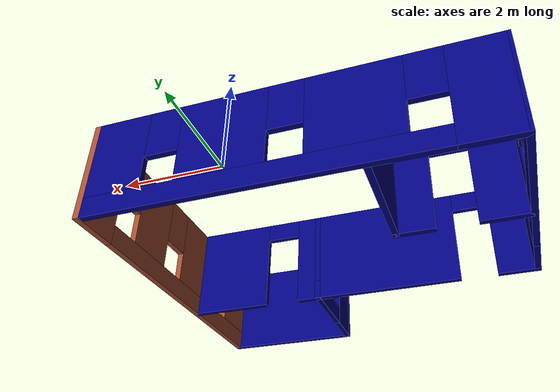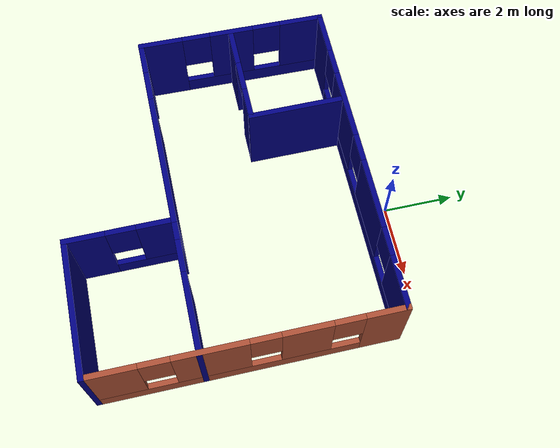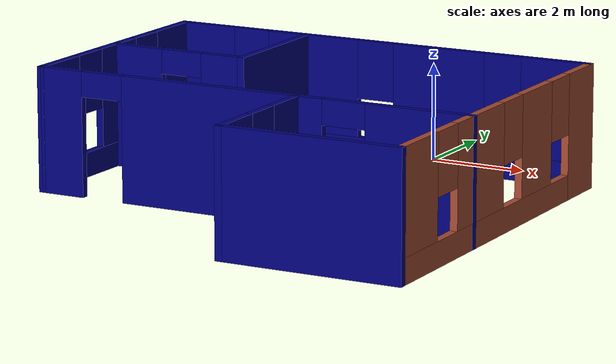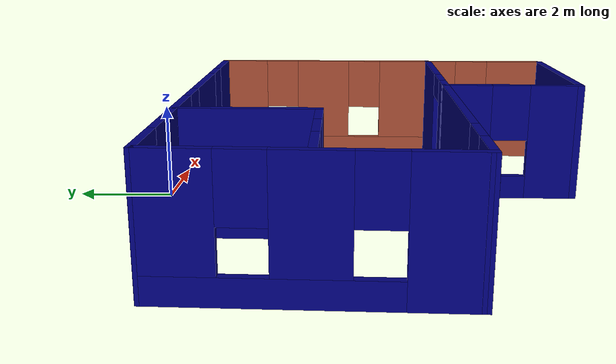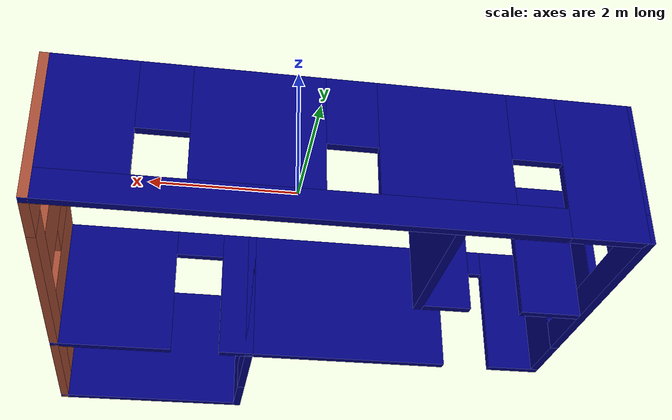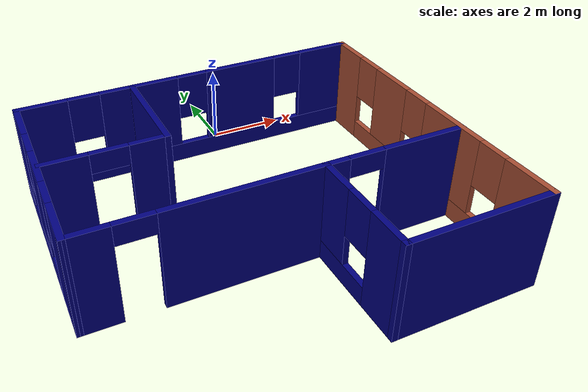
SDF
<?xml version='1.0'?>
<sdf version='1.6'>
  <model name='Building'>
    <pose frame=''>-0.890707 -4.78929 0 0 -0 0</pose>
    <link name='Wall_1'>
      <pose frame=''>0.050707 4.04929 0 0 -0 0</pose>
      <visual name='Wall_1_Visual_0'>
        <pose frame=''>-3.9775 0 1.25 0 -0 0</pose>
        <geometry>
          <box>
            <size>1.295 0.15 2.5</size>
          </box>
        </geometry>
        <material>
          <script>
            <uri>file://media/materials/scripts/gazebo.material</uri>
            <name>Gazebo/Grey</name>
          </script>
          <ambient>0 0 0.498039 1</ambient>
        </material>
        <meta>
          <layer>0</layer>
        </meta>
      </visual>
      <collision name='Wall_1_Collision_0'>
        <geometry>
          <box>
            <size>1.295 0.15 2.5</size>
          </box>
        </geometry>
        <pose frame=''>-3.9775 0 1.25 0 -0 0</pose>
      </collision>
      <visual name='Wall_1_Visual_1'>
        <pose frame=''>0.6475 0 0.25 0 -0 0</pose>
        <geometry>
          <box>
            <size>7.955 0.15 0.5</size>
          </box>
        </geometry>
        <material>
          <script>
            <uri>file://media/materials/scripts/gazebo.material</uri>
            <name>Gazebo/Grey</name>
          </script>
          <ambient>0 0 0.498039 1</ambient>
        </material>
        <meta>
          <layer>0</layer>
        </meta>
      </visual>
      <collision name='Wall_1_Collision_1'>
        <geometry>
          <box>
            <size>7.955 0.15 0.5</size>
          </box>
        </geometry>
        <pose frame=''>0.6475 0 0.25 0 -0 0</pose>
      </collision>
      <visual name='Wall_1_Visual_2'>
        <pose frame=''>-1.5 0 1.5 0 -0 0</pose>
        <geometry>
          <box>
            <size>2.06 0.15 2</size>
          </box>
        </geometry>
        <material>
          <script>
            <uri>file://media/materials/scripts/gazebo.material</uri>
            <name>Gazebo/Grey</name>
          </script>
          <ambient>0 0 0.498039 1</ambient>
        </material>
        <meta>
          <layer>0</layer>
        </meta>
      </visual>
      <collision name='Wall_1_Collision_2'>
        <geometry>
          <box>
            <size>2.06 0.15 2</size>
          </box>
        </geometry>
        <pose frame=''>-1.5 0 1.5 0 -0 0</pose>
      </collision>
      <visual name='Wall_1_Visual_3'>
        <pose frame=''>1.335 0 1.5 0 -0 0</pose>
        <geometry>
          <box>
            <size>2.01 0.15 2</size>
          </box>
        </geometry>
        <material>
          <script>
            <uri>file://media/materials/scripts/gazebo.material</uri>
            <name>Gazebo/Grey</name>
          </script>
          <ambient>0 0 0.498039 1</ambient>
        </material>
        <meta>
          <layer>0</layer>
        </meta>
      </visual>
      <collision name='Wall_1_Collision_3'>
        <geometry>
          <box>
            <size>2.01 0.15 2</size>
          </box>
        </geometry>
        <pose frame=''>1.335 0 1.5 0 -0 0</pose>
      </collision>
      <visual name='Wall_1_Visual_4'>
        <pose frame=''>3.8825 0 1.5 0 -0 0</pose>
        <geometry>
          <box>
            <size>1.485 0.15 2</size>
          </box>
        </geometry>
        <material>
          <script>
            <uri>file://media/materials/scripts/gazebo.material</uri>
            <name>Gazebo/Grey</name>
          </script>
          <ambient>0 0 0.498039 1</ambient>
        </material>
        <meta>
          <layer>0</layer>
        </meta>
      </visual>
      <collision name='Wall_1_Collision_4'>
        <geometry>
          <box>
            <size>1.485 0.15 2</size>
          </box>
        </geometry>
        <pose frame=''>3.8825 0 1.5 0 -0 0</pose>
      </collision>
      <visual name='Wall_1_Visual_5'>
        <pose frame=''>-2.93 0 1.9 0 -0 0</pose>
        <geometry>
          <box>
            <size>0.8 0.15 1.2</size>
          </box>
        </geometry>
        <material>
          <script>
            <uri>file://media/materials/scripts/gazebo.material</uri>
            <name>Gazebo/Grey</name>
          </script>
          <ambient>0 0 0.498039 1</ambient>
        </material>
        <meta>
          <layer>0</layer>
        </meta>
      </visual>
      <collision name='Wall_1_Collision_5'>
        <geometry>
          <box>
            <size>0.8 0.15 1.2</size>
          </box>
        </geometry>
        <pose frame=''>-2.93 0 1.9 0 -0 0</pose>
      </collision>
      <visual name='Wall_1_Visual_6'>
        <pose frame=''>-0.07 0 1.9 0 -0 0</pose>
        <geometry>
          <box>
            <size>0.8 0.15 1.2</size>
          </box>
        </geometry>
        <material>
          <script>
            <uri>file://media/materials/scripts/gazebo.material</uri>
            <name>Gazebo/Grey</name>
          </script>
          <ambient>0 0 0.498039 1</ambient>
        </material>
        <meta>
          <layer>0</layer>
        </meta>
      </visual>
      <collision name='Wall_1_Collision_6'>
        <geometry>
          <box>
            <size>0.8 0.15 1.2</size>
          </box>
        </geometry>
        <pose frame=''>-0.07 0 1.9 0 -0 0</pose>
      </collision>
      <visual name='Wall_1_Visual_7'>
        <pose frame=''>2.74 0 1.9 0 -0 0</pose>
        <geometry>
          <box>
            <size>0.8 0.15 1.2</size>
          </box>
        </geometry>
        <material>
          <script>
            <uri>file://media/materials/scripts/gazebo.material</uri>
            <name>Gazebo/Grey</name>
          </script>
          <ambient>0 0 0.498039 1</ambient>
        </material>
        <meta>
          <layer>0</layer>
        </meta>
      </visual>
      <collision name='Wall_1_Collision_7'>
        <geometry>
          <box>
            <size>0.8 0.15 1.2</size>
          </box>
        </geometry>
        <pose frame=''>2.74 0 1.9 0 -0 0</pose>
      </collision>
    </link>
    <link name='Wall_10'>
      <pose frame=''>-1.79929 -1.20071 0 0 -0 3.14159</pose>
      <visual name='Wall_10_Visual_0'>
        <pose frame=''>-0.9525 0 1.25 0 -0 0</pose>
        <geometry>
          <box>
            <size>3.845 0.15 2.5</size>
          </box>
        </geometry>
        <material>
          <script>
            <uri>file://media/materials/scripts/gazebo.material</uri>
            <name>Gazebo/Grey</name>
          </script>
          <ambient>0 0 0.498039 1</ambient>
        </material>
        <meta>
          <layer>0</layer>
        </meta>
      </visual>
      <collision name='Wall_10_Collision_0'>
        <geometry>
          <box>
            <size>3.845 0.15 2.5</size>
          </box>
        </geometry>
        <pose frame=''>-0.9525 0 1.25 0 -0 0</pose>
      </collision>
      <visual name='Wall_10_Visual_1'>
        <pose frame=''>2.3725 0 1.25 0 -0 0</pose>
        <geometry>
          <box>
            <size>1.005 0.15 2.5</size>
          </box>
        </geometry>
        <material>
          <script>
            <uri>file://media/materials/scripts/gazebo.material</uri>
            <name>Gazebo/Grey</name>
          </script>
          <ambient>0 0 0.498039 1</ambient>
        </material>
        <meta>
          <layer>0</layer>
        </meta>
      </visual>
      <collision name='Wall_10_Collision_1'>
        <geometry>
          <box>
            <size>1.005 0.15 2.5</size>
          </box>
        </geometry>
        <pose frame=''>2.3725 0 1.25 0 -0 0</pose>
      </collision>
      <visual name='Wall_10_Visual_2'>
        <pose frame=''>1.42 0 2.25 0 -0 0</pose>
        <geometry>
          <box>
            <size>0.9 0.15 0.5</size>
          </box>
        </geometry>
        <material>
          <script>
            <uri>file://media/materials/scripts/gazebo.material</uri>
            <name>Gazebo/Grey</name>
          </script>
          <ambient>0 0 0.498039 1</ambient>
        </material>
        <meta>
          <layer>0</layer>
        </meta>
      </visual>
      <collision name='Wall_10_Collision_2'>
        <geometry>
          <box>
            <size>0.9 0.15 0.5</size>
          </box>
        </geometry>
        <pose frame=''>1.42 0 2.25 0 -0 0</pose>
      </collision>
    </link>
    <link name='Wall_11'>
      <pose frame=''>-4.54929 1.42429 0 0 -0 1.55175</pose>
      <visual name='Wall_11_Visual_0'>
        <pose frame=''>-2.06764 0 1.25 0 -0 0</pose>
        <geometry>
          <box>
            <size>1.26566 0.15 2.5</size>
          </box>
        </geometry>
        <material>
          <script>
            <uri>file://media/materials/scripts/gazebo.material</uri>
            <name>Gazebo/Grey</name>
          </script>
          <ambient>0 0 0.498039 1</ambient>
        </material>
        <meta>
          <layer>0</layer>
        </meta>
      </visual>
      <collision name='Wall_11_Collision_0'>
        <geometry>
          <box>
            <size>1.26566 0.15 2.5</size>
          </box>
        </geometry>
        <pose frame=''>-2.06764 0 1.25 0 -0 0</pose>
      </collision>
      <visual name='Wall_11_Visual_1'>
        <pose frame=''>0.632832 0 0.25 0 -0 0</pose>
        <geometry>
          <box>
            <size>4.13529 0.15 0.5</size>
          </box>
        </geometry>
        <material>
          <script>
            <uri>file://media/materials/scripts/gazebo.material</uri>
            <name>Gazebo/Grey</name>
          </script>
          <ambient>0 0 0.498039 1</ambient>
        </material>
        <meta>
          <layer>0</layer>
        </meta>
      </visual>
      <collision name='Wall_11_Collision_1'>
        <geometry>
          <box>
            <size>4.13529 0.15 0.5</size>
          </box>
        </geometry>
        <pose frame=''>0.632832 0 0.25 0 -0 0</pose>
      </collision>
      <visual name='Wall_11_Visual_2'>
        <pose frame=''>-0.004142 0 1.5 0 -0 0</pose>
        <geometry>
          <box>
            <size>1.26134 0.15 2</size>
          </box>
        </geometry>
        <material>
          <script>
            <uri>file://media/materials/scripts/gazebo.material</uri>
            <name>Gazebo/Grey</name>
          </script>
          <ambient>0 0 0.498039 1</ambient>
        </material>
        <meta>
          <layer>0</layer>
        </meta>
      </visual>
      <collision name='Wall_11_Collision_2'>
        <geometry>
          <box>
            <size>1.26134 0.15 2</size>
          </box>
        </geometry>
        <pose frame=''>-0.004142 0 1.5 0 -0 0</pose>
      </collision>
      <visual name='Wall_11_Visual_3'>
        <pose frame=''>2.0635 0 1.5 0 -0 0</pose>
        <geometry>
          <box>
            <size>1.27395 0.15 2</size>
          </box>
        </geometry>
        <material>
          <script>
            <uri>file://media/materials/scripts/gazebo.material</uri>
            <name>Gazebo/Grey</name>
          </script>
          <ambient>0 0 0.498039 1</ambient>
        </material>
        <meta>
          <layer>0</layer>
        </meta>
      </visual>
      <collision name='Wall_11_Collision_3'>
        <geometry>
          <box>
            <size>1.27395 0.15 2</size>
          </box>
        </geometry>
        <pose frame=''>2.0635 0 1.5 0 -0 0</pose>
      </collision>
      <visual name='Wall_11_Visual_4'>
        <pose frame=''>-1.03481 0 1.9 0 -0 0</pose>
        <geometry>
          <box>
            <size>0.8 0.15 1.2</size>
          </box>
        </geometry>
        <material>
          <script>
            <uri>file://media/materials/scripts/gazebo.material</uri>
            <name>Gazebo/Grey</name>
          </script>
          <ambient>0 0 0.498039 1</ambient>
        </material>
        <meta>
          <layer>0</layer>
        </meta>
      </visual>
      <collision name='Wall_11_Collision_4'>
        <geometry>
          <box>
            <size>0.8 0.15 1.2</size>
          </box>
        </geometry>
        <pose frame=''>-1.03481 0 1.9 0 -0 0</pose>
      </collision>
      <visual name='Wall_11_Visual_5'>
        <pose frame=''>1.02653 0 1.9 0 -0 0</pose>
        <geometry>
          <box>
            <size>0.8 0.15 1.2</size>
          </box>
        </geometry>
        <material>
          <script>
            <uri>file://media/materials/scripts/gazebo.material</uri>
            <name>Gazebo/Grey</name>
          </script>
          <ambient>0 0 0.498039 1</ambient>
        </material>
        <meta>
          <layer>0</layer>
        </meta>
      </visual>
      <collision name='Wall_11_Collision_5'>
        <geometry>
          <box>
            <size>0.8 0.15 1.2</size>
          </box>
        </geometry>
        <pose frame=''>1.02653 0 1.9 0 -0 0</pose>
      </collision>
    </link>
    <link name='Wall_13'>
      <pose frame=''>-3.05429 1.39929 0 0 -0 0</pose>
      <visual name='Wall_13_Visual_0'>
        <pose frame=''>-0.9375 0 1.25 0 -0 0</pose>
        <geometry>
          <box>
            <size>1.125 0.15 2.5</size>
          </box>
        </geometry>
        <material>
          <script>
            <uri>file://media/materials/scripts/gazebo.material</uri>
            <name>Gazebo/Grey</name>
          </script>
          <ambient>0 0 0.498039 1</ambient>
        </material>
        <meta>
          <layer>0</layer>
        </meta>
      </visual>
      <collision name='Wall_13_Collision_0'>
        <geometry>
          <box>
            <size>1.125 0.15 2.5</size>
          </box>
        </geometry>
        <pose frame=''>-0.9375 0 1.25 0 -0 0</pose>
      </collision>
      <visual name='Wall_13_Visual_1'>
        <pose frame=''>1.0125 0 1.25 0 -0 0</pose>
        <geometry>
          <box>
            <size>0.975 0.15 2.5</size>
          </box>
        </geometry>
        <material>
          <script>
            <uri>file://media/materials/scripts/gazebo.material</uri>
            <name>Gazebo/Grey</name>
          </script>
          <ambient>0 0 0.498039 1</ambient>
        </material>
        <meta>
          <layer>0</layer>
        </meta>
      </visual>
      <collision name='Wall_13_Collision_1'>
        <geometry>
          <box>
            <size>0.975 0.15 2.5</size>
          </box>
        </geometry>
        <pose frame=''>1.0125 0 1.25 0 -0 0</pose>
      </collision>
      <visual name='Wall_13_Visual_2'>
        <pose frame=''>0.075 0 2.25 0 -0 0</pose>
        <geometry>
          <box>
            <size>0.9 0.15 0.5</size>
          </box>
        </geometry>
        <material>
          <script>
            <uri>file://media/materials/scripts/gazebo.material</uri>
            <name>Gazebo/Grey</name>
          </script>
          <ambient>0 0 0.498039 1</ambient>
        </material>
        <meta>
          <layer>0</layer>
        </meta>
      </visual>
      <collision name='Wall_13_Collision_2'>
        <geometry>
          <box>
            <size>0.9 0.15 0.5</size>
          </box>
        </geometry>
        <pose frame=''>0.075 0 2.25 0 -0 0</pose>
      </collision>
    </link>
    <link name='Wall_14'>
      <collision name='Wall_14_Collision'>
        <geometry>
          <box>
            <size>2.75 0.15 2.5</size>
          </box>
        </geometry>
        <pose frame=''>0 0 1.25 0 -0 0</pose>
      </collision>
      <visual name='Wall_14_Visual'>
        <pose frame=''>0 0 1.25 0 -0 0</pose>
        <geometry>
          <box>
            <size>2.75 0.15 2.5</size>
          </box>
        </geometry>
        <material>
          <script>
            <uri>file://media/materials/scripts/gazebo.material</uri>
            <name>Gazebo/Grey</name>
          </script>
          <ambient>0 0 0.498039 1</ambient>
        </material>
        <meta>
          <layer>0</layer>
        </meta>
      </visual>
      <pose frame=''>-1.62929 2.69929 0 0 -0 1.5708</pose>
    </link>
    <link name='Wall_16'>
      <pose frame=''>2.80071 -1.20071 0 0 -0 0</pose>
      <visual name='Wall_16_Visual_0'>
        <pose frame=''>-1.5525 0 1.25 0 -0 0</pose>
        <geometry>
          <box>
            <size>0.645 0.15 2.5</size>
          </box>
        </geometry>
        <material>
          <script>
            <uri>file://media/materials/scripts/gazebo.material</uri>
            <name>Gazebo/Grey</name>
          </script>
          <ambient>0 0 0.498039 1</ambient>
        </material>
        <meta>
          <layer>0</layer>
        </meta>
      </visual>
      <collision name='Wall_16_Collision_0'>
        <geometry>
          <box>
            <size>0.645 0.15 2.5</size>
          </box>
        </geometry>
        <pose frame=''>-1.5525 0 1.25 0 -0 0</pose>
      </collision>
      <visual name='Wall_16_Visual_1'>
        <pose frame=''>0.7725 0 1.25 0 -0 0</pose>
        <geometry>
          <box>
            <size>2.205 0.15 2.5</size>
          </box>
        </geometry>
        <material>
          <script>
            <uri>file://media/materials/scripts/gazebo.material</uri>
            <name>Gazebo/Grey</name>
          </script>
          <ambient>0 0 0.498039 1</ambient>
        </material>
        <meta>
          <layer>0</layer>
        </meta>
      </visual>
      <collision name='Wall_16_Collision_1'>
        <geometry>
          <box>
            <size>2.205 0.15 2.5</size>
          </box>
        </geometry>
        <pose frame=''>0.7725 0 1.25 0 -0 0</pose>
      </collision>
      <visual name='Wall_16_Visual_2'>
        <pose frame=''>-0.78 0 2.25 0 -0 0</pose>
        <geometry>
          <box>
            <size>0.9 0.15 0.5</size>
          </box>
        </geometry>
        <material>
          <script>
            <uri>file://media/materials/scripts/gazebo.material</uri>
            <name>Gazebo/Grey</name>
          </script>
          <ambient>0 0 0.498039 1</ambient>
        </material>
        <meta>
          <layer>0</layer>
        </meta>
      </visual>
      <collision name='Wall_16_Collision_2'>
        <geometry>
          <box>
            <size>0.9 0.15 0.5</size>
          </box>
        </geometry>
        <pose frame=''>-0.78 0 2.25 0 -0 0</pose>
      </collision>
    </link>
    <link name='Wall_2'>
      <pose frame=''>4.60071 -0.000707 0 0 0 -1.5708</pose>
      <visual name='Wall_2_Visual_0'>
        <pose frame=''>-3.5475 0 1.25 0 -0 0</pose>
        <geometry>
          <box>
            <size>1.155 0.15 2.5</size>
          </box>
        </geometry>
        <material>
          <script>
            <uri>file://media/materials/scripts/gazebo.material</uri>
            <name>Gazebo/Bricks</name>
          </script>
          <ambient>0 0 0.498039 1</ambient>
        </material>
        <meta>
          <layer>0</layer>
        </meta>
      </visual>
      <collision name='Wall_2_Collision_0'>
        <geometry>
          <box>
            <size>1.155 0.15 2.5</size>
          </box>
        </geometry>
        <pose frame=''>-3.5475 0 1.25 0 -0 0</pose>
      </collision>
      <visual name='Wall_2_Visual_1'>
        <pose frame=''>0.5775 0 0.25 0 -0 0</pose>
        <geometry>
          <box>
            <size>7.095 0.15 0.5</size>
          </box>
        </geometry>
        <material>
          <script>
            <uri>file://media/materials/scripts/gazebo.material</uri>
            <name>Gazebo/Bricks</name>
          </script>
          <ambient>0 0 0.498039 1</ambient>
        </material>
        <meta>
          <layer>0</layer>
        </meta>
      </visual>
      <collision name='Wall_2_Collision_1'>
        <geometry>
          <box>
            <size>7.095 0.15 0.5</size>
          </box>
        </geometry>
        <pose frame=''>0.5775 0 0.25 0 -0 0</pose>
      </collision>
      <visual name='Wall_2_Visual_2'>
        <pose frame=''>-1.51 0 1.5 0 -0 0</pose>
        <geometry>
          <box>
            <size>1.32 0.15 2</size>
          </box>
        </geometry>
        <material>
          <script>
            <uri>file://media/materials/scripts/gazebo.material</uri>
            <name>Gazebo/Bricks</name>
          </script>
          <ambient>0 0 0.498039 1</ambient>
        </material>
        <meta>
          <layer>0</layer>
        </meta>
      </visual>
      <collision name='Wall_2_Collision_2'>
        <geometry>
          <box>
            <size>1.32 0.15 2</size>
          </box>
        </geometry>
        <pose frame=''>-1.51 0 1.5 0 -0 0</pose>
      </collision>
      <visual name='Wall_2_Visual_3'>
        <pose frame=''>0.925 0 1.5 0 -0 0</pose>
        <geometry>
          <box>
            <size>1.95 0.15 2</size>
          </box>
        </geometry>
        <material>
          <script>
            <uri>file://media/materials/scripts/gazebo.material</uri>
            <name>Gazebo/Bricks</name>
          </script>
          <ambient>0 0 0.498039 1</ambient>
        </material>
        <meta>
          <layer>0</layer>
        </meta>
      </visual>
      <collision name='Wall_2_Collision_3'>
        <geometry>
          <box>
            <size>1.95 0.15 2</size>
          </box>
        </geometry>
        <pose frame=''>0.925 0 1.5 0 -0 0</pose>
      </collision>
      <visual name='Wall_2_Visual_4'>
        <pose frame=''>3.4125 0 1.5 0 -0 0</pose>
        <geometry>
          <box>
            <size>1.425 0.15 2</size>
          </box>
        </geometry>
        <material>
          <script>
            <uri>file://media/materials/scripts/gazebo.material</uri>
            <name>Gazebo/Bricks</name>
          </script>
          <ambient>0 0 0.498039 1</ambient>
        </material>
        <meta>
          <layer>0</layer>
        </meta>
      </visual>
      <collision name='Wall_2_Collision_4'>
        <geometry>
          <box>
            <size>1.425 0.15 2</size>
          </box>
        </geometry>
        <pose frame=''>3.4125 0 1.5 0 -0 0</pose>
      </collision>
      <visual name='Wall_2_Visual_5'>
        <pose frame=''>-2.57 0 1.9 0 -0 0</pose>
        <geometry>
          <box>
            <size>0.8 0.15 1.2</size>
          </box>
        </geometry>
        <material>
          <script>
            <uri>file://media/materials/scripts/gazebo.material</uri>
            <name>Gazebo/Bricks</name>
          </script>
          <ambient>0 0 0.498039 1</ambient>
        </material>
        <meta>
          <layer>0</layer>
        </meta>
      </visual>
      <collision name='Wall_2_Collision_5'>
        <geometry>
          <box>
            <size>0.8 0.15 1.2</size>
          </box>
        </geometry>
        <pose frame=''>-2.57 0 1.9 0 -0 0</pose>
      </collision>
      <visual name='Wall_2_Visual_6'>
        <pose frame=''>-0.45 0 1.9 0 -0 0</pose>
        <geometry>
          <box>
            <size>0.8 0.15 1.2</size>
          </box>
        </geometry>
        <material>
          <script>
            <uri>file://media/materials/scripts/gazebo.material</uri>
            <name>Gazebo/Bricks</name>
          </script>
          <ambient>0 0 0.498039 1</ambient>
        </material>
        <meta>
          <layer>0</layer>
        </meta>
      </visual>
      <collision name='Wall_2_Collision_6'>
        <geometry>
          <box>
            <size>0.8 0.15 1.2</size>
          </box>
        </geometry>
        <pose frame=''>-0.45 0 1.9 0 -0 0</pose>
      </collision>
      <visual name='Wall_2_Visual_7'>
        <pose frame=''>2.3 0 1.9 0 -0 0</pose>
        <geometry>
          <box>
            <size>0.8 0.15 1.2</size>
          </box>
        </geometry>
        <material>
          <script>
            <uri>file://media/materials/scripts/gazebo.material</uri>
            <name>Gazebo/Bricks</name>
          </script>
          <ambient>0 0 0.498039 1</ambient>
        </material>
        <meta>
          <layer>0</layer>
        </meta>
      </visual>
      <collision name='Wall_2_Collision_7'>
        <geometry>
          <box>
            <size>0.8 0.15 1.2</size>
          </box>
        </geometry>
        <pose frame=''>2.3 0 1.9 0 -0 0</pose>
      </collision>
    </link>
    <link name='Wall_3'>
      <collision name='Wall_3_Collision'>
        <geometry>
          <box>
            <size>3.75 0.15 2.5</size>
          </box>
        </geometry>
        <pose frame=''>0 0 1.25 0 -0 0</pose>
      </collision>
      <visual name='Wall_3_Visual'>
        <pose frame=''>0 0 1.25 0 -0 0</pose>
        <geometry>
          <box>
            <size>3.75 0.15 2.5</size>
          </box>
        </geometry>
        <material>
          <script>
            <uri>file://media/materials/scripts/gazebo.material</uri>
            <name>Gazebo/Grey</name>
          </script>
          <ambient>0 0 0.498039 1</ambient>
        </material>
        <meta>
          <layer>0</layer>
        </meta>
      </visual>
      <pose frame=''>2.80071 -4.05071 0 0 -0 3.14159</pose>
    </link>
    <link name='Wall_4'>
      <pose frame=''>1.00071 -2.62571 0 0 -0 1.5708</pose>
      <visual name='Wall_4_Visual_0'>
        <pose frame=''>-0.9325 0 1.25 0 -0 0</pose>
        <geometry>
          <box>
            <size>1.135 0.15 2.5</size>
          </box>
        </geometry>
        <material>
          <script>
            <uri>file://media/materials/scripts/gazebo.material</uri>
            <name>Gazebo/Grey</name>
          </script>
          <ambient>0 0 0.498039 1</ambient>
        </material>
        <meta>
          <layer>0</layer>
        </meta>
      </visual>
      <collision name='Wall_4_Collision_0'>
        <geometry>
          <box>
            <size>1.135 0.15 2.5</size>
          </box>
        </geometry>
        <pose frame=''>-0.9325 0 1.25 0 -0 0</pose>
      </collision>
      <visual name='Wall_4_Visual_1'>
        <pose frame=''>0.5675 0 0.25 0 -0 0</pose>
        <geometry>
          <box>
            <size>1.865 0.15 0.5</size>
          </box>
        </geometry>
        <material>
          <script>
            <uri>file://media/materials/scripts/gazebo.material</uri>
            <name>Gazebo/Grey</name>
          </script>
          <ambient>0 0 0.498039 1</ambient>
        </material>
        <meta>
          <layer>0</layer>
        </meta>
      </visual>
      <collision name='Wall_4_Collision_1'>
        <geometry>
          <box>
            <size>1.865 0.15 0.5</size>
          </box>
        </geometry>
        <pose frame=''>0.5675 0 0.25 0 -0 0</pose>
      </collision>
      <visual name='Wall_4_Visual_2'>
        <pose frame=''>0.9675 0 1.5 0 -0 0</pose>
        <geometry>
          <box>
            <size>1.065 0.15 2</size>
          </box>
        </geometry>
        <material>
          <script>
            <uri>file://media/materials/scripts/gazebo.material</uri>
            <name>Gazebo/Grey</name>
          </script>
          <ambient>0 0 0.498039 1</ambient>
        </material>
        <meta>
          <layer>0</layer>
        </meta>
      </visual>
      <collision name='Wall_4_Collision_2'>
        <geometry>
          <box>
            <size>1.065 0.15 2</size>
          </box>
        </geometry>
        <pose frame=''>0.9675 0 1.5 0 -0 0</pose>
      </collision>
      <visual name='Wall_4_Visual_3'>
        <pose frame=''>0.035 0 1.9 0 -0 0</pose>
        <geometry>
          <box>
            <size>0.8 0.15 1.2</size>
          </box>
        </geometry>
        <material>
          <script>
            <uri>file://media/materials/scripts/gazebo.material</uri>
            <name>Gazebo/Grey</name>
          </script>
          <ambient>0 0 0.498039 1</ambient>
        </material>
        <meta>
          <layer>0</layer>
        </meta>
      </visual>
      <collision name='Wall_4_Collision_3'>
        <geometry>
          <box>
            <size>0.8 0.15 1.2</size>
          </box>
        </geometry>
        <pose frame=''>0.035 0 1.9 0 -0 0</pose>
      </collision>
    </link>
    <static>1</static>
  </model>
</sdf>
